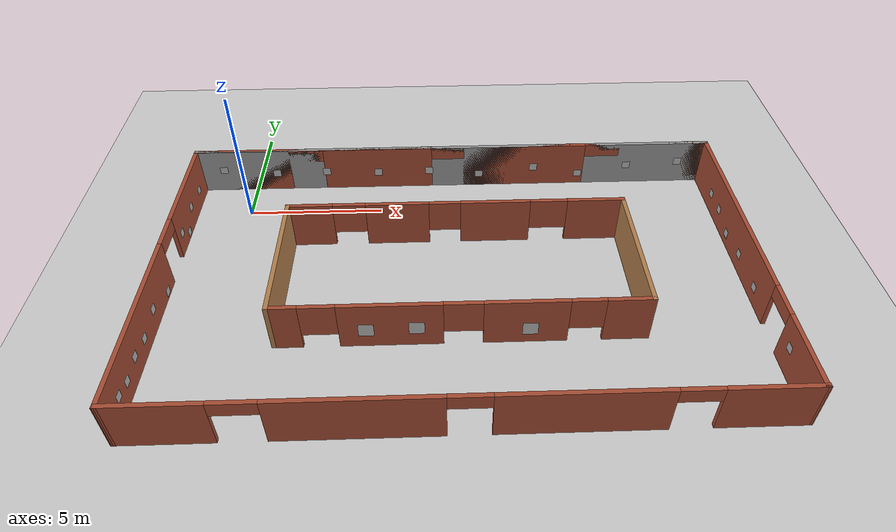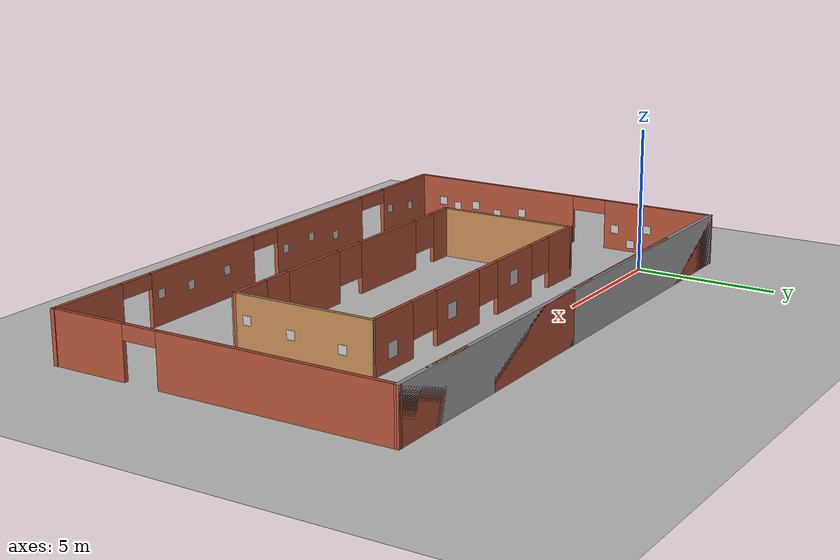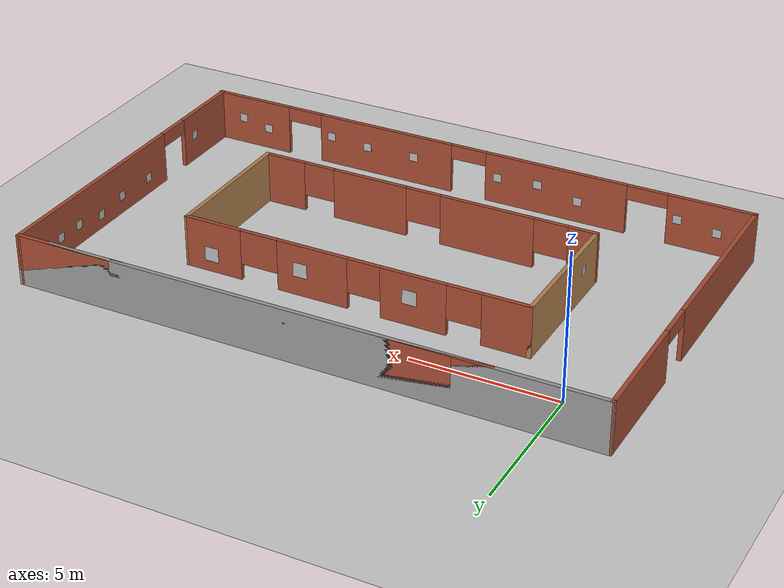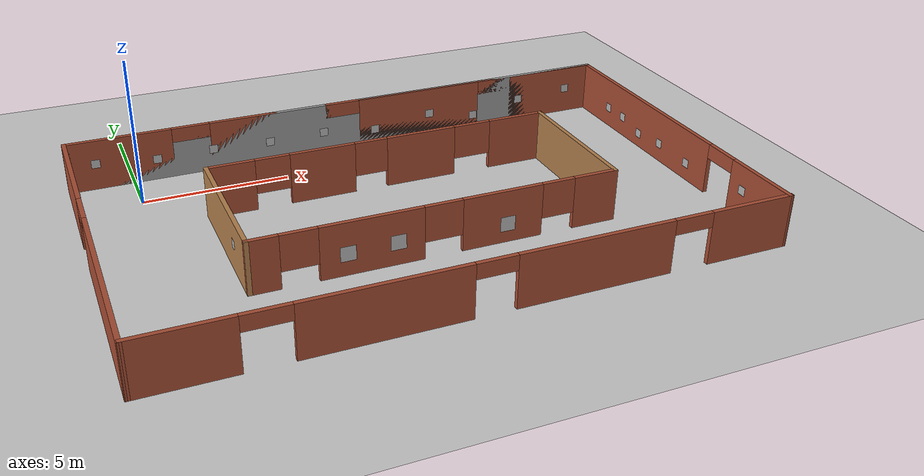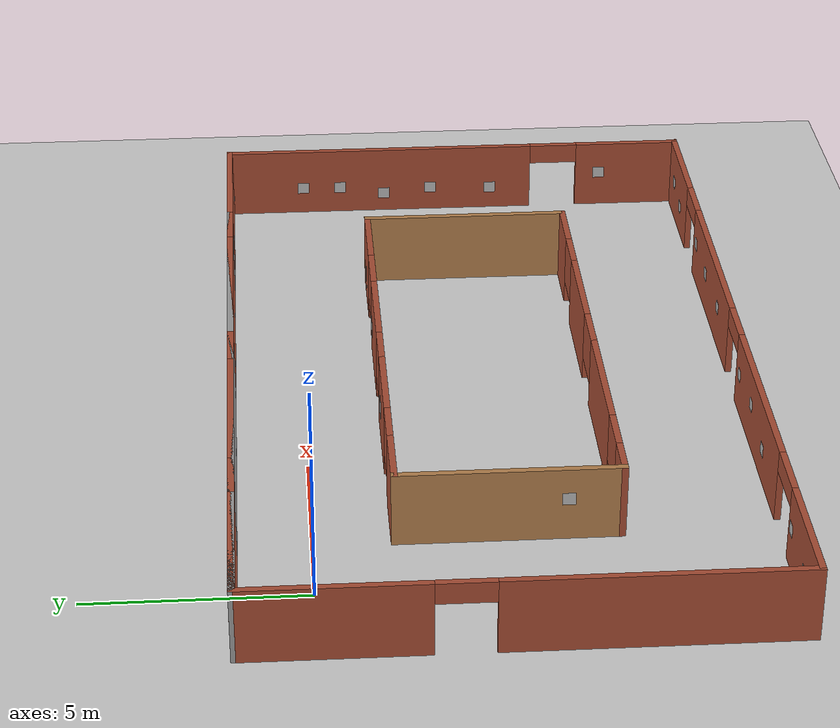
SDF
<sdf version="1.6">
 <world name="default">
  <light name="sun" type="directional">
   <pose>0 0 10 0 -0 0</pose>
   <diffuse>0.8 0.8 0.8 1</diffuse>
   <specular>0.1 0.1 0.1 1</specular>
   <attenuation>
    <range>1000</range>
    <constant>0.9</constant>
    <linear>0.01</linear>
    <quadratic>0.001</quadratic>
   </attenuation>
   <direction>-0.5 0.5 -1</direction>
  </light>
  <model name="ground_plane">
   <static>1</static>
   <link name="link">
    <collision name="collision">
     <geometry><plane><normal>0 0 1</normal><size>100 100</size></plane></geometry>
     <surface><friction><ode><mu>100</mu><mu2>50</mu2></ode></friction></surface>
    </collision>
    <visual name="visual">
     <cast_shadows>0</cast_shadows>
     <geometry><plane><normal>0 0 1</normal><size>100 100</size></plane></geometry>
     <material>
      <script><uri>file://media/materials/scripts/gazebo.material</uri><name>Gazebo/Grey</name></script>
     </material>
    </visual>
   </link>
  </model>
  <gravity>0 0 -9.8</gravity>
  <magnetic_field>6e-06 2.3e-05 -4.2e-05</magnetic_field>
  <atmosphere type="adiabatic"/>
  <physics name="default_physics" default="0" type="ode">
   <max_step_size>0.001</max_step_size>
   <real_time_factor>1</real_time_factor>
   <real_time_update_rate>1000</real_time_update_rate>
  </physics>
  <scene><ambient>0.4 0.4 0.4 1</ambient><background>0.7 0.7 0.7 1</background><shadows>1</shadows></scene>
  <spherical_coordinates>
   <surface_model>EARTH_WGS84</surface_model>
   <latitude_deg>0</latitude_deg>
   <longitude_deg>0</longitude_deg>
   <elevation>0</elevation>
   <heading_deg>0</heading_deg>
  </spherical_coordinates>
  <model name="tagtagtag">
   <model name="rectang_tag_door">
    <model name="Tag10">
     <static>1</static>
     <link name="link">
      <pose>0 0 0.1 0 -0 0</pose>
      <collision name="collision"><geometry><box><size>0.5 0.001 0.5</size></box></geometry></collision>
      <visual name="visual">
       <cast_shadows>0</cast_shadows>
       <geometry><box><size>0.5 0.001 0.5</size></box></geometry>
       <material>
        <script>
         <uri>model://Tag10/materials/scripts</uri>
         <uri>model://Tag10/materials/textures</uri>
         <name>vrc/Tag10</name>
        </script>
       </material>
      </visual>
     </link>
     <pose>-2.56781 -2.7391 -0.115231 0 -0 0</pose>
    </model>
    <model name="Tag11">
     <static>1</static>
     <link name="link">
      <pose>0 0 0.1 0 -0 0</pose>
      <collision name="collision"><geometry><box><size>0.5 0.001 0.5</size></box></geometry></collision>
      <visual name="visual">
       <cast_shadows>0</cast_shadows>
       <geometry><box><size>0.5 0.001 0.5</size></box></geometry>
       <material>
        <script>
         <uri>model://Tag11/materials/scripts</uri>
         <uri>model://Tag11/materials/textures</uri>
         <name>vrc/Tag11</name>
        </script>
       </material>
      </visual>
     </link>
     <pose>-0.967016 -2.71591 -0.09296 0 -0 0</pose>
    </model>
    <model name="Tag12">
     <static>1</static>
     <link name="link">
      <pose>0 0 0.1 0 -0 0</pose>
      <collision name="collision"><geometry><box><size>0.5 0.001 0.5</size></box></geometry></collision>
      <visual name="visual">
       <cast_shadows>0</cast_shadows>
       <geometry><box><size>0.5 0.001 0.5</size></box></geometry>
       <material>
        <script>
         <uri>model://Tag12/materials/scripts</uri>
         <uri>model://Tag12/materials/textures</uri>
         <name>vrc/Tag12</name>
        </script>
       </material>
      </visual>
     </link>
     <pose>2.62514 -2.78803 -0.180677 0 -0 0</pose>
    </model>
    <model name="Tag16">
     <static>1</static>
     <link name="link">
      <pose>0 0 0.1 0 1.57 0</pose>
      <collision name="collision"><geometry><box><size>0.5 0.001 0.5</size></box></geometry></collision>
      <visual name="visual">
       <cast_shadows>0</cast_shadows>
       <geometry><box><size>0.5 0.001 0.5</size></box></geometry>
       <material>
        <script>
         <uri>model://Tag16/materials/scripts</uri>
         <uri>model://Tag16/materials/textures</uri>
         <name>vrc/Tag16</name>
        </script>
       </material>
      </visual>
     </link>
     <pose>5.53752 2.44638 -0.24217 0 -0 0</pose>
    </model>
    <model name="Tag17">
     <static>1</static>
     <link name="link">
      <pose>0 0 0.1 0 -0 0</pose>
      <collision name="collision"><geometry><box><size>0.5 0.001 0.5</size></box></geometry></collision>
      <visual name="visual">
       <cast_shadows>0</cast_shadows>
       <geometry><box><size>0.5 0.001 0.5</size></box></geometry>
       <material>
        <script>
         <uri>model://Tag17/materials/scripts</uri>
         <uri>model://Tag17/materials/textures</uri>
         <name>vrc/Tag17</name>
        </script>
       </material>
      </visual>
     </link>
     <pose>2.27492 2.46278 0.055693 0 -0 0</pose>
    </model>
    <model name="Tag19">
     <static>1</static>
     <link name="link">
      <pose>0 0 0.1 0 -0 0</pose>
      <collision name="collision"><geometry><box><size>0.5 0.001 0.5</size></box></geometry></collision>
      <visual name="visual">
       <cast_shadows>0</cast_shadows>
       <geometry><box><size>0.5 0.001 0.5</size></box></geometry>
       <material>
        <script>
         <uri>model://Tag19/materials/scripts</uri>
         <uri>model://Tag19/materials/textures</uri>
         <name>vrc/Tag19</name>
        </script>
       </material>
      </visual>
     </link>
     <pose>-1.56097 2.45711 0.126815 0 -0 0</pose>
    </model>
    <model name="Tag500">
     <static>1</static>
     <link name="link">
      <pose>0 0 0 0 1.57 0</pose>
      <collision name="collision"><geometry><box><size>0.3 0.001 0.3</size></box></geometry></collision>
      <visual name="visual">
       <cast_shadows>0</cast_shadows>
       <geometry><box><size>0.3 0.001 0.3</size></box></geometry>
       <material>
        <script>
         <uri>model://Tag500/materials/scripts</uri>
         <uri>model://Tag500/materials/textures</uri>
         <name>vrc/Tag500</name>
        </script>
       </material>
      </visual>
     </link>
     <pose>-8.63151 5.78139 0.17484 0 -0 0</pose>
    </model>
    <model name="Tag501">
     <static>1</static>
     <link name="link">
      <pose>0 0 0 0 1.57 0</pose>
      <collision name="collision"><geometry><box><size>0.3 0.001 0.3</size></box></geometry></collision>
      <visual name="visual">
       <cast_shadows>0</cast_shadows>
       <geometry><box><size>0.3 0.001 0.3</size></box></geometry>
       <material>
        <script>
         <uri>model://Tag501/materials/scripts</uri>
         <uri>model://Tag501/materials/textures</uri>
         <name>vrc/Tag501</name>
        </script>
       </material>
      </visual>
     </link>
     <pose>-6.56786 5.76946 -0.005082 0 -0 0</pose>
    </model>
    <model name="Tag502">
     <static>1</static>
     <link name="link">
      <pose>0 0 0 0 1.57 0</pose>
      <collision name="collision"><geometry><box><size>0.3 0.001 0.3</size></box></geometry></collision>
      <visual name="visual">
       <cast_shadows>0</cast_shadows>
       <geometry><box><size>0.3 0.001 0.3</size></box></geometry>
       <material>
        <script>
         <uri>model://Tag502/materials/scripts</uri>
         <uri>model://Tag502/materials/textures</uri>
         <name>vrc/Tag502</name>
        </script>
       </material>
      </visual>
     </link>
     <pose>-4.60085 5.78078 0.027283 0 -0 0</pose>
    </model>
    <model name="Tag503">
     <static>1</static>
     <link name="link">
      <pose>0 0 0 0 1.57 0</pose>
      <collision name="collision"><geometry><box><size>0.3 0.001 0.3</size></box></geometry></collision>
      <visual name="visual">
       <cast_shadows>0</cast_shadows>
       <geometry><box><size>0.3 0.001 0.3</size></box></geometry>
       <material>
        <script>
         <uri>model://Tag503/materials/scripts</uri>
         <uri>model://Tag503/materials/textures</uri>
         <name>vrc/Tag503</name>
        </script>
       </material>
      </visual>
     </link>
     <pose>-2.55467 5.77379 -0.046381 0 -0 0</pose>
    </model>
    <model name="Tag504">
     <static>1</static>
     <link name="link">
      <pose>0 0 0 0 1.57 0</pose>
      <collision name="collision"><geometry><box><size>0.3 0.001 0.3</size></box></geometry></collision>
      <visual name="visual">
       <cast_shadows>0</cast_shadows>
       <geometry><box><size>0.3 0.001 0.3</size></box></geometry>
       <material>
        <script>
         <uri>model://Tag504/materials/scripts</uri>
         <uri>model://Tag504/materials/textures</uri>
         <name>vrc/Tag504</name>
        </script>
       </material>
      </visual>
     </link>
     <pose>-0.537655 5.77031 -0.010499 0 -0 0</pose>
    </model>
    <model name="Tag505">
     <static>1</static>
     <link name="link">
      <pose>0 0 0 0 1.57 0</pose>
      <collision name="collision"><geometry><box><size>0.3 0.001 0.3</size></box></geometry></collision>
      <visual name="visual">
       <cast_shadows>0</cast_shadows>
       <geometry><box><size>0.3 0.001 0.3</size></box></geometry>
       <material>
        <script>
         <uri>model://Tag505/materials/scripts</uri>
         <uri>model://Tag505/materials/textures</uri>
         <name>vrc/Tag505</name>
        </script>
       </material>
      </visual>
     </link>
     <pose>1.45105 5.77601 -0.223016 0 -0 0</pose>
    </model>
    <model name="Tag506">
     <static>1</static>
     <link name="link">
      <pose>0 0 0 0 1.57 0</pose>
      <collision name="collision"><geometry><box><size>0.3 0.001 0.3</size></box></geometry></collision>
      <visual name="visual">
       <cast_shadows>0</cast_shadows>
       <geometry><box><size>0.3 0.001 0.3</size></box></geometry>
       <material>
        <script>
         <uri>model://Tag506/materials/scripts</uri>
         <uri>model://Tag506/materials/textures</uri>
         <name>vrc/Tag506</name>
        </script>
       </material>
      </visual>
     </link>
     <pose>3.6389 5.78005 0.050605 0 -0 0</pose>
    </model>
    <model name="Tag508">
     <static>1</static>
     <link name="link">
      <pose>0 0 0 0 1.57 0</pose>
      <collision name="collision"><geometry><box><size>0.3 0.001 0.3</size></box></geometry></collision>
      <visual name="visual">
       <cast_shadows>0</cast_shadows>
       <geometry><box><size>0.3 0.001 0.3</size></box></geometry>
       <material>
        <script>
         <uri>model://Tag508/materials/scripts</uri>
         <uri>model://Tag508/materials/textures</uri>
         <name>vrc/Tag508</name>
        </script>
       </material>
      </visual>
     </link>
     <pose>5.45198 5.773 -0.294287 0 -0 0</pose>
    </model>
    <model name="Tag509">
     <static>1</static>
     <link name="link">
      <pose>0 0 0 0 1.57 0</pose>
      <collision name="collision"><geometry><box><size>0.3 0.001 0.3</size></box></geometry></collision>
      <visual name="visual">
       <cast_shadows>0</cast_shadows>
       <geometry><box><size>0.3 0.001 0.3</size></box></geometry>
       <material>
        <script>
         <uri>model://Tag509/materials/scripts</uri>
         <uri>model://Tag509/materials/textures</uri>
         <name>vrc/Tag509</name>
        </script>
       </material>
      </visual>
     </link>
     <pose>7.37911 5.77859 0.055954 0 -0 0</pose>
    </model>
    <model name="Tag510">
     <static>1</static>
     <link name="link">
      <pose>0 0 0 0 1.57 0</pose>
      <collision name="collision"><geometry><box><size>0.3 0.001 0.3</size></box></geometry></collision>
      <visual name="visual">
       <cast_shadows>0</cast_shadows>
       <geometry><box><size>0.3 0.001 0.3</size></box></geometry>
       <material>
        <script>
         <uri>model://Tag510/materials/scripts</uri>
         <uri>model://Tag510/materials/textures</uri>
         <name>vrc/Tag510</name>
        </script>
       </material>
      </visual>
     </link>
     <pose>9.43357 5.76854 0.199067 0 -0 0</pose>
    </model>
    <model name="Tag511_0">
     <static>1</static>
     <link name="link">
      <pose>0 0 0 0 1.57 0</pose>
      <collision name="collision"><geometry><box><size>0.3 0.001 0.3</size></box></geometry></collision>
      <visual name="visual">
       <cast_shadows>0</cast_shadows>
       <geometry><box><size>0.3 0.001 0.3</size></box></geometry>
       <material>
        <script>
         <uri>model://Tag511/materials/scripts</uri>
         <uri>model://Tag511/materials/textures</uri>
         <name>vrc/Tag511</name>
        </script>
       </material>
      </visual>
     </link>
     <pose>9.49825 -6.04076 0.206371 0 -0 0</pose>
    </model>
    <model name="Tag512">
     <static>1</static>
     <link name="link">
      <pose>0 0 0 0 1.57 0</pose>
      <collision name="collision"><geometry><box><size>0.3 0.001 0.3</size></box></geometry></collision>
      <visual name="visual">
       <cast_shadows>0</cast_shadows>
       <geometry><box><size>0.3 0.001 0.3</size></box></geometry>
       <material>
        <script>
         <uri>model://Tag512/materials/scripts</uri>
         <uri>model://Tag512/materials/textures</uri>
         <name>vrc/Tag512</name>
        </script>
       </material>
      </visual>
     </link>
     <pose>8.45936 -6.03277 0.008141 0 -0 0</pose>
    </model>
    <model name="Tag513">
     <static>1</static>
     <link name="link">
      <pose>0 0 0 0 1.57 0</pose>
      <collision name="collision"><geometry><box><size>0.3 0.001 0.3</size></box></geometry></collision>
      <visual name="visual">
       <cast_shadows>0</cast_shadows>
       <geometry><box><size>0.3 0.001 0.3</size></box></geometry>
       <material>
        <script>
         <uri>model://Tag513/materials/scripts</uri>
         <uri>model://Tag513/materials/textures</uri>
         <name>vrc/Tag513</name>
        </script>
       </material>
      </visual>
     </link>
     <pose>5.89194 -6.04825 0.261097 0 -0 0</pose>
    </model>
    <model name="Tag514">
     <static>1</static>
     <link name="link">
      <pose>0 0 0 0 1.57 0</pose>
      <collision name="collision"><geometry><box><size>0.3 0.001 0.3</size></box></geometry></collision>
      <visual name="visual">
       <cast_shadows>0</cast_shadows>
       <geometry><box><size>0.3 0.001 0.3</size></box></geometry>
       <material>
        <script>
         <uri>model://Tag514/materials/scripts</uri>
         <uri>model://Tag514/materials/textures</uri>
         <name>vrc/Tag514</name>
        </script>
       </material>
      </visual>
     </link>
     <pose>4.45592 -6.0546 0.177076 0 -0 0</pose>
    </model>
    <model name="Tag515">
     <static>1</static>
     <link name="link">
      <pose>0 0 0 0 1.57 0</pose>
      <collision name="collision"><geometry><box><size>0.3 0.001 0.3</size></box></geometry></collision>
      <visual name="visual">
       <cast_shadows>0</cast_shadows>
       <geometry><box><size>0.3 0.001 0.3</size></box></geometry>
       <material>
        <script>
         <uri>model://Tag515/materials/scripts</uri>
         <uri>model://Tag515/materials/textures</uri>
         <name>vrc/Tag515</name>
        </script>
       </material>
      </visual>
     </link>
     <pose>2.64375 -6.05189 0.210848 0 -0 0</pose>
    </model>
    <model name="Tag516">
     <static>1</static>
     <link name="link">
      <pose>0 0 0 0 1.57 0</pose>
      <collision name="collision"><geometry><box><size>0.3 0.001 0.3</size></box></geometry></collision>
      <visual name="visual">
       <cast_shadows>0</cast_shadows>
       <geometry><box><size>0.3 0.001 0.3</size></box></geometry>
       <material>
        <script>
         <uri>model://Tag516/materials/scripts</uri>
         <uri>model://Tag516/materials/textures</uri>
         <name>vrc/Tag516</name>
        </script>
       </material>
      </visual>
     </link>
     <pose>-0.550614 -6.04681 0.182751 0 -0 0</pose>
    </model>
    <model name="Tag517">
     <static>1</static>
     <link name="link">
      <pose>0 0 0 0 1.57 0</pose>
      <collision name="collision"><geometry><box><size>0.3 0.001 0.3</size></box></geometry></collision>
      <visual name="visual">
       <cast_shadows>0</cast_shadows>
       <geometry><box><size>0.3 0.001 0.3</size></box></geometry>
       <material>
        <script>
         <uri>model://Tag517/materials/scripts</uri>
         <uri>model://Tag517/materials/textures</uri>
         <name>vrc/Tag517</name>
        </script>
       </material>
      </visual>
     </link>
     <pose>-2.03037 -6.05292 0.265919 0 -0 0</pose>
    </model>
    <model name="Tag518">
     <static>1</static>
     <link name="link">
      <pose>0 0 0 0 1.57 0</pose>
      <collision name="collision"><geometry><box><size>0.3 0.001 0.3</size></box></geometry></collision>
      <visual name="visual">
       <cast_shadows>0</cast_shadows>
       <geometry><box><size>0.3 0.001 0.3</size></box></geometry>
       <material>
        <script>
         <uri>model://Tag518/materials/scripts</uri>
         <uri>model://Tag518/materials/textures</uri>
         <name>vrc/Tag518</name>
        </script>
       </material>
      </visual>
     </link>
     <pose>-3.49891 -6.05222 -0.008344 0 -0 0</pose>
    </model>
    <model name="Tag519">
     <static>1</static>
     <link name="link">
      <pose>0 0 0 0 1.57 0</pose>
      <collision name="collision"><geometry><box><size>0.3 0.001 0.3</size></box></geometry></collision>
      <visual name="visual">
       <cast_shadows>0</cast_shadows>
       <geometry><box><size>0.3 0.001 0.3</size></box></geometry>
       <material>
        <script>
         <uri>model://Tag519/materials/scripts</uri>
         <uri>model://Tag519/materials/textures</uri>
         <name>vrc/Tag519</name>
        </script>
       </material>
      </visual>
     </link>
     <pose>-7.02121 -6.02807 0.214664 0 -0 0</pose>
    </model>
    <model name="Tag520">
     <static>1</static>
     <link name="link">
      <pose>0 0 0 0 1.57 0</pose>
      <collision name="collision"><geometry><box><size>0.3 0.001 0.3</size></box></geometry></collision>
      <visual name="visual">
       <cast_shadows>0</cast_shadows>
       <geometry><box><size>0.3 0.001 0.3</size></box></geometry>
       <material>
        <script>
         <uri>model://Tag520/materials/scripts</uri>
         <uri>model://Tag520/materials/textures</uri>
         <name>vrc/Tag520</name>
        </script>
       </material>
      </visual>
     </link>
     <pose>-8.39361 -6.03917 0.042146 0 -0 0</pose>
    </model>
    <model name="Tag531">
     <static>1</static>
     <link name="link">
      <pose>0 0 0 0 -0 1.57</pose>
      <collision name="collision"><geometry><box><size>0.3 0.001 0.3</size></box></geometry></collision>
      <visual name="visual">
       <cast_shadows>0</cast_shadows>
       <geometry><box><size>0.3 0.001 0.3</size></box></geometry>
       <material>
        <script>
         <uri>model://Tag531/materials/scripts</uri>
         <uri>model://Tag531/materials/textures</uri>
         <name>vrc/Tag531</name>
        </script>
       </material>
      </visual>
     </link>
     <pose>-9.46434 -5.15371 0.121026 0 -0 0</pose>
    </model>
    <model name="Tag532">
     <static>1</static>
     <link name="link">
      <pose>0 0 0 0 -0 1.57</pose>
      <collision name="collision"><geometry><box><size>0.3 0.001 0.3</size></box></geometry></collision>
      <visual name="visual">
       <cast_shadows>0</cast_shadows>
       <geometry><box><size>0.3 0.001 0.3</size></box></geometry>
       <material>
        <script>
         <uri>model://Tag532/materials/scripts</uri>
         <uri>model://Tag532/materials/textures</uri>
         <name>vrc/Tag532</name>
        </script>
       </material>
      </visual>
     </link>
     <pose>-9.43448 -3.67672 0.1199 0 -0 0</pose>
    </model>
    <model name="Tag533">
     <static>1</static>
     <link name="link">
      <pose>0 0 0 0 -0 1.57</pose>
      <collision name="collision"><geometry><box><size>0.3 0.001 0.3</size></box></geometry></collision>
      <visual name="visual">
       <cast_shadows>0</cast_shadows>
       <geometry><box><size>0.3 0.001 0.3</size></box></geometry>
       <material>
        <script>
         <uri>model://Tag533/materials/scripts</uri>
         <uri>model://Tag533/materials/textures</uri>
         <name>vrc/Tag533</name>
        </script>
       </material>
      </visual>
     </link>
     <pose>-9.43647 -1.68 0.088645 0 -0 0</pose>
    </model>
    <model name="Tag534">
     <static>1</static>
     <link name="link">
      <pose>0 0 0 0 -0 1.57</pose>
      <collision name="collision"><geometry><box><size>0.3 0.001 0.3</size></box></geometry></collision>
      <visual name="visual">
       <cast_shadows>0</cast_shadows>
       <geometry><box><size>0.3 0.001 0.3</size></box></geometry>
       <material>
        <script>
         <uri>model://Tag534/materials/scripts</uri>
         <uri>model://Tag534/materials/textures</uri>
         <name>vrc/Tag534</name>
        </script>
       </material>
      </visual>
     </link>
     <pose>-9.39568 -0.411083 -0.359263 0 -0 0</pose>
    </model>
    <model name="Tag535">
     <static>1</static>
     <link name="link">
      <pose>0 0 0 0 -0 1.57</pose>
      <collision name="collision"><geometry><box><size>0.3 0.001 0.3</size></box></geometry></collision>
      <visual name="visual">
       <cast_shadows>0</cast_shadows>
       <geometry><box><size>0.3 0.001 0.3</size></box></geometry>
       <material>
        <script>
         <uri>model://Tag535/materials/scripts</uri>
         <uri>model://Tag535/materials/textures</uri>
         <name>vrc/Tag535</name>
        </script>
       </material>
      </visual>
     </link>
     <pose>-9.45868 2.20865 0.001535 0 -0 0</pose>
    </model>
    <model name="Tag536">
     <static>1</static>
     <link name="link">
      <pose>0 0 0 0 -0 1.57</pose>
      <collision name="collision"><geometry><box><size>0.3 0.001 0.3</size></box></geometry></collision>
      <visual name="visual">
       <cast_shadows>0</cast_shadows>
       <geometry><box><size>0.3 0.001 0.3</size></box></geometry>
       <material>
        <script>
         <uri>model://Tag536/materials/scripts</uri>
         <uri>model://Tag536/materials/textures</uri>
         <name>vrc/Tag536</name>
        </script>
       </material>
      </visual>
     </link>
     <pose>-9.40956 3.51705 0.159334 0 -0 0</pose>
    </model>
    <model name="Tag537">
     <static>1</static>
     <link name="link">
      <pose>0 0 0 0 -0 1.57</pose>
      <collision name="collision"><geometry><box><size>0.3 0.001 0.3</size></box></geometry></collision>
      <visual name="visual">
       <cast_shadows>0</cast_shadows>
       <geometry><box><size>0.3 0.001 0.3</size></box></geometry>
       <material>
        <script>
         <uri>model://Tag537/materials/scripts</uri>
         <uri>model://Tag537/materials/textures</uri>
         <name>vrc/Tag537</name>
        </script>
       </material>
      </visual>
     </link>
     <pose>-9.45738 4.8265 -0.0513 0 -0 0</pose>
    </model>
    <model name="Tag538">
     <static>1</static>
     <link name="link">
      <pose>0 0 0 0 -0 1.57</pose>
      <collision name="collision"><geometry><box><size>0.3 0.001 0.3</size></box></geometry></collision>
      <visual name="visual">
       <cast_shadows>0</cast_shadows>
       <geometry><box><size>0.3 0.001 0.3</size></box></geometry>
       <material>
        <script>
         <uri>model://Tag538/materials/scripts</uri>
         <uri>model://Tag538/materials/textures</uri>
         <name>vrc/Tag538</name>
        </script>
       </material>
      </visual>
     </link>
     <pose>-9.45703 2.84833 -0.48277 0 -0 0</pose>
    </model>
    <model name="Tag539">
     <static>1</static>
     <link name="link">
      <pose>0 0 0 0 -0 1.57</pose>
      <collision name="collision"><geometry><box><size>0.3 0.001 0.3</size></box></geometry></collision>
      <visual name="visual">
       <cast_shadows>0</cast_shadows>
       <geometry><box><size>0.3 0.001 0.3</size></box></geometry>
       <material>
        <script>
         <uri>model://Tag539/materials/scripts</uri>
         <uri>model://Tag539/materials/textures</uri>
         <name>vrc/Tag539</name>
        </script>
       </material>
      </visual>
     </link>
     <pose>-9.45583 -4.50507 -0.009742 0 -0 0</pose>
    </model>
    <model name="Tag540">
     <static>1</static>
     <link name="link">
      <pose>0 0 0 0 -0 1.57</pose>
      <collision name="collision"><geometry><box><size>0.3 0.001 0.3</size></box></geometry></collision>
      <visual name="visual">
       <cast_shadows>0</cast_shadows>
       <geometry><box><size>0.3 0.001 0.3</size></box></geometry>
       <material>
        <script>
         <uri>model://Tag540/materials/scripts</uri>
         <uri>model://Tag540/materials/textures</uri>
         <name>vrc/Tag540</name>
        </script>
       </material>
      </visual>
     </link>
     <pose>-9.45822 -2.76528 -0.084634 0 -0 0</pose>
    </model>
    <model name="Tag541">
     <static>1</static>
     <link name="link">
      <pose>0 0 0 0 -0 1.57</pose>
      <collision name="collision"><geometry><box><size>0.3 0.001 0.3</size></box></geometry></collision>
      <visual name="visual">
       <cast_shadows>0</cast_shadows>
       <geometry><box><size>0.3 0.001 0.3</size></box></geometry>
       <material>
        <script>
         <uri>model://Tag541/materials/scripts</uri>
         <uri>model://Tag541/materials/textures</uri>
         <name>vrc/Tag541</name>
        </script>
       </material>
      </visual>
     </link>
     <pose>10.3807 4.91568 -0.461618 0 -0 0</pose>
    </model>
    <model name="Tag542">
     <static>1</static>
     <link name="link">
      <pose>0 0 0 0 -0 1.57</pose>
      <collision name="collision"><geometry><box><size>0.3 0.001 0.3</size></box></geometry></collision>
      <visual name="visual">
       <cast_shadows>0</cast_shadows>
       <geometry><box><size>0.3 0.001 0.3</size></box></geometry>
       <material>
        <script>
         <uri>model://Tag542/materials/scripts</uri>
         <uri>model://Tag542/materials/textures</uri>
         <name>vrc/Tag542</name>
        </script>
       </material>
      </visual>
     </link>
     <pose>10.3435 3.90989 -0.047569 0 -0 0</pose>
    </model>
    <model name="Tag543">
     <static>1</static>
     <link name="link">
      <pose>0 0 0 0 -0 1.57</pose>
      <collision name="collision"><geometry><box><size>0.3 0.001 0.3</size></box></geometry></collision>
      <visual name="visual">
       <cast_shadows>0</cast_shadows>
       <geometry><box><size>0.3 0.001 0.3</size></box></geometry>
       <material>
        <script>
         <uri>model://Tag543/materials/scripts</uri>
         <uri>model://Tag543/materials/textures</uri>
         <name>vrc/Tag543</name>
        </script>
       </material>
      </visual>
     </link>
     <pose>10.3377 2.92258 -0.0475 0 -0 0</pose>
    </model>
    <model name="Tag544">
     <static>1</static>
     <link name="link">
      <pose>0 0 0 0 -0 1.57</pose>
      <collision name="collision"><geometry><box><size>0.3 0.001 0.3</size></box></geometry></collision>
      <visual name="visual">
       <cast_shadows>0</cast_shadows>
       <geometry><box><size>0.3 0.001 0.3</size></box></geometry>
       <material>
        <script>
         <uri>model://Tag544/materials/scripts</uri>
         <uri>model://Tag544/materials/textures</uri>
         <name>vrc/Tag544</name>
        </script>
       </material>
      </visual>
     </link>
     <pose>10.2886 1.74988 -0.222134 0 -0 0</pose>
    </model>
    <model name="Tag545">
     <static>1</static>
     <link name="link">
      <pose>0 0 0 0 -0 1.57</pose>
      <collision name="collision"><geometry><box><size>0.3 0.001 0.3</size></box></geometry></collision>
      <visual name="visual">
       <cast_shadows>0</cast_shadows>
       <geometry><box><size>0.3 0.001 0.3</size></box></geometry>
       <material>
        <script>
         <uri>model://Tag545/materials/scripts</uri>
         <uri>model://Tag545/materials/textures</uri>
         <name>vrc/Tag545</name>
        </script>
       </material>
      </visual>
     </link>
     <pose>10.3205 0.491024 -0.104602 0 -0 0</pose>
    </model>
    <model name="Tag546">
     <static>1</static>
     <link name="link">
      <pose>0 0 0 0 -0 1.57</pose>
      <collision name="collision"><geometry><box><size>0.3 0.001 0.3</size></box></geometry></collision>
      <visual name="visual">
       <cast_shadows>0</cast_shadows>
       <geometry><box><size>0.3 0.001 0.3</size></box></geometry>
       <material>
        <script>
         <uri>model://Tag546/materials/scripts</uri>
         <uri>model://Tag546/materials/textures</uri>
         <name>vrc/Tag546</name>
        </script>
       </material>
      </visual>
     </link>
     <pose>10.3313 -1.11998 -0.160051 0 -0 0</pose>
    </model>
    <model name="Tag547">
     <static>1</static>
     <link name="link">
      <pose>0 0 0 0 -0 1.57</pose>
      <collision name="collision"><geometry><box><size>0.3 0.001 0.3</size></box></geometry></collision>
      <visual name="visual">
       <cast_shadows>0</cast_shadows>
       <geometry><box><size>0.3 0.001 0.3</size></box></geometry>
       <material>
        <script>
         <uri>model://Tag547/materials/scripts</uri>
         <uri>model://Tag547/materials/textures</uri>
         <name>vrc/Tag547</name>
        </script>
       </material>
      </visual>
     </link>
     <pose>10.3486 -4.09101 0.177507 0 -0 0</pose>
    </model>
    <model name="Tag548">
     <static>1</static>
     <link name="link">
      <pose>0 0 0 0 -0 1.57</pose>
      <collision name="collision"><geometry><box><size>0.3 0.001 0.3</size></box></geometry></collision>
      <visual name="visual">
       <cast_shadows>0</cast_shadows>
       <geometry><box><size>0.3 0.001 0.3</size></box></geometry>
       <material>
        <script>
         <uri>model://Tag548/materials/scripts</uri>
         <uri>model://Tag548/materials/textures</uri>
         <name>vrc/Tag548</name>
        </script>
       </material>
      </visual>
     </link>
     <pose>6.57981 -2.10699 0.230481 0 -0 0</pose>
    </model>
    <model name="Tag549">
     <static>1</static>
     <link name="link">
      <pose>0 0 0 0 -0 1.57</pose>
      <collision name="collision"><geometry><box><size>0.3 0.001 0.3</size></box></geometry></collision>
      <visual name="visual">
       <cast_shadows>0</cast_shadows>
       <geometry><box><size>0.3 0.001 0.3</size></box></geometry>
       <material>
        <script>
         <uri>model://Tag549/materials/scripts</uri>
         <uri>model://Tag549/materials/textures</uri>
         <name>vrc/Tag549</name>
        </script>
       </material>
      </visual>
     </link>
     <pose>6.57833 -0.487634 0.063 0 -0 0</pose>
    </model>
    <model name="Tag550">
     <static>1</static>
     <link name="link">
      <pose>0 0 0 0 -0 1.57</pose>
      <collision name="collision"><geometry><box><size>0.3 0.001 0.3</size></box></geometry></collision>
      <visual name="visual">
       <cast_shadows>0</cast_shadows>
       <geometry><box><size>0.3 0.001 0.3</size></box></geometry>
       <material>
        <script>
         <uri>model://Tag550/materials/scripts</uri>
         <uri>model://Tag550/materials/textures</uri>
         <name>vrc/Tag550</name>
        </script>
       </material>
      </visual>
     </link>
     <pose>6.57501 1.37979 -0.055489 0 -0 0</pose>
    </model>
    <model name="Tag551">
     <static>1</static>
     <link name="link">
      <pose>0 0 0 0 -0 1.57</pose>
      <collision name="collision"><geometry><box><size>0.3 0.001 0.3</size></box></geometry></collision>
      <visual name="visual">
       <cast_shadows>0</cast_shadows>
       <geometry><box><size>0.3 0.001 0.3</size></box></geometry>
       <material>
        <script>
         <uri>model://Tag551/materials/scripts</uri>
         <uri>model://Tag551/materials/textures</uri>
         <name>vrc/Tag551</name>
        </script>
       </material>
      </visual>
     </link>
     <pose>-5.63019 1.9353 -0.188828 0 -0 0</pose>
    </model>
    <model name="Tag552">
     <static>1</static>
     <link name="link">
      <pose>0 0 0 0 -0 1.57</pose>
      <collision name="collision"><geometry><box><size>0.3 0.001 0.3</size></box></geometry></collision>
      <visual name="visual">
       <cast_shadows>0</cast_shadows>
       <geometry><box><size>0.3 0.001 0.3</size></box></geometry>
       <material>
        <script>
         <uri>model://Tag552/materials/scripts</uri>
         <uri>model://Tag552/materials/textures</uri>
         <name>vrc/Tag552</name>
        </script>
       </material>
      </visual>
     </link>
     <pose>-5.62265 0.300223 -0.009232 0 -0 0</pose>
    </model>
    <model name="Tag553">
     <static>1</static>
     <link name="link">
      <pose>0 0 0 0 -0 1.57</pose>
      <collision name="collision"><geometry><box><size>0.3 0.001 0.3</size></box></geometry></collision>
      <visual name="visual">
       <cast_shadows>0</cast_shadows>
       <geometry><box><size>0.3 0.001 0.3</size></box></geometry>
       <material>
        <script>
         <uri>model://Tag553/materials/scripts</uri>
         <uri>model://Tag553/materials/textures</uri>
         <name>vrc/Tag553</name>
        </script>
       </material>
      </visual>
     </link>
     <pose>-5.66178 -1.43448 0.282688 0 -0 0</pose>
    </model>
    <static>0</static>
    <pose>-0.217911 0.067642 0.745209 0 -0 0</pose>
   </model>
   <model name="rectangle_door">
    <pose>0.217911 -0.067642 -0.745205 0 -0 0</pose>
    <link name="Wall_0">
     <collision name="Wall_0_Collision">
      <geometry><box><size>20.15 0.15 2.5</size></box></geometry>
      <pose>0 0 1.25 0 -0 0</pose>
     </collision>
     <visual name="Wall_0_Visual">
      <pose>0 0 1.25 0 -0 0</pose>
      <geometry><box><size>20.15 0.15 2.5</size></box></geometry>
      <material>
       <script><uri>file://media/materials/scripts/gazebo.material</uri><name>Gazebo/Grey</name></script>
       <ambient>1 1 1 1</ambient>
      </material>
      <meta><layer>0</layer></meta>
     </visual>
     <pose>0.004778 6 0 0 -0 0</pose>
    </link>
    <link name="Wall_10">
     <pose>0.004778 2.5 0 0 -0 0</pose>
     <visual name="Wall_10_Visual_0">
      <pose>-5.24374 0 1.25 0 -0 0</pose>
      <geometry><box><size>1.66252 0.15 2.5</size></box></geometry>
      <material>
       <script><uri>file://media/materials/scripts/gazebo.material</uri><name>Gazebo/Bricks</name></script>
       <ambient>1 1 1 1</ambient>
      </material>
      <meta><layer>0</layer></meta>
     </visual>
     <collision name="Wall_10_Collision_0">
      <geometry><box><size>1.66252 0.15 2.5</size></box></geometry>
      <pose>-5.24374 0 1.25 0 -0 0</pose>
     </collision>
     <visual name="Wall_10_Visual_1">
      <pose>0.831259 0 0.25 0 -0 0</pose>
      <geometry><box><size>10.4875 0.15 0.5</size></box></geometry>
      <material>
       <script><uri>file://media/materials/scripts/gazebo.material</uri><name>Gazebo/Bricks</name></script>
       <ambient>1 1 1 1</ambient>
      </material>
      <meta><layer>0</layer></meta>
     </visual>
     <collision name="Wall_10_Collision_1">
      <geometry><box><size>10.4875 0.15 0.5</size></box></geometry>
      <pose>0.831259 0 0.25 0 -0 0</pose>
     </collision>
     <visual name="Wall_10_Visual_2">
      <pose>-2.11057 0 1.5 0 -0 0</pose>
      <geometry><box><size>2.25902 0.15 2</size></box></geometry>
      <material>
       <script><uri>file://media/materials/scripts/gazebo.material</uri><name>Gazebo/Bricks</name></script>
       <ambient>1 1 1 1</ambient>
      </material>
      <meta><layer>0</layer></meta>
     </visual>
     <collision name="Wall_10_Collision_2">
      <geometry><box><size>2.25902 0.15 2</size></box></geometry>
      <pose>-2.11057 0 1.5 0 -0 0</pose>
     </collision>
     <visual name="Wall_10_Visual_3">
      <pose>1.41396 0 1.5 0 -0 0</pose>
      <geometry><box><size>2.49843 0.15 2</size></box></geometry>
      <material>
       <script><uri>file://media/materials/scripts/gazebo.material</uri><name>Gazebo/Bricks</name></script>
       <ambient>1 1 1 1</ambient>
      </material>
      <meta><layer>0</layer></meta>
     </visual>
     <collision name="Wall_10_Collision_3">
      <geometry><box><size>2.49843 0.15 2</size></box></geometry>
      <pose>1.41396 0 1.5 0 -0 0</pose>
     </collision>
     <visual name="Wall_10_Visual_4">
      <pose>5.03509 0 1.5 0 -0 0</pose>
      <geometry><box><size>2.07983 0.15 2</size></box></geometry>
      <material>
       <script><uri>file://media/materials/scripts/gazebo.material</uri><name>Gazebo/Bricks</name></script>
       <ambient>1 1 1 1</ambient>
      </material>
      <meta><layer>0</layer></meta>
     </visual>
     <collision name="Wall_10_Collision_4">
      <geometry><box><size>2.07983 0.15 2</size></box></geometry>
      <pose>5.03509 0 1.5 0 -0 0</pose>
     </collision>
     <visual name="Wall_10_Visual_5">
      <pose>-3.82628 0 1.9 0 -0 0</pose>
      <geometry><box><size>1.1724 0.15 1.2</size></box></geometry>
      <material>
       <script><uri>file://media/materials/scripts/gazebo.material</uri><name>Gazebo/Bricks</name></script>
       <ambient>1 1 1 1</ambient>
      </material>
      <meta><layer>0</layer></meta>
     </visual>
     <collision name="Wall_10_Collision_5">
      <geometry><box><size>1.1724 0.15 1.2</size></box></geometry>
      <pose>-3.82628 0 1.9 0 -0 0</pose>
     </collision>
     <visual name="Wall_10_Visual_6">
      <pose>-0.408155 0 1.9 0 -0 0</pose>
      <geometry><box><size>1.1458 0.15 1.2</size></box></geometry>
      <material>
       <script><uri>file://media/materials/scripts/gazebo.material</uri><name>Gazebo/Bricks</name></script>
       <ambient>1 1 1 1</ambient>
      </material>
      <meta><layer>0</layer></meta>
     </visual>
     <collision name="Wall_10_Collision_6">
      <geometry><box><size>1.1458 0.15 1.2</size></box></geometry>
      <pose>-0.408155 0 1.9 0 -0 0</pose>
     </collision>
     <visual name="Wall_10_Visual_7">
      <pose>3.32917 0 1.9 0 -0 0</pose>
      <geometry><box><size>1.332 0.15 1.2</size></box></geometry>
      <material>
       <script><uri>file://media/materials/scripts/gazebo.material</uri><name>Gazebo/Bricks</name></script>
       <ambient>1 1 1 1</ambient>
      </material>
      <meta><layer>0</layer></meta>
     </visual>
     <collision name="Wall_10_Collision_7">
      <geometry><box><size>1.332 0.15 1.2</size></box></geometry>
      <pose>3.32917 0 1.9 0 -0 0</pose>
     </collision>
    </link>
    <link name="Wall_11">
     <collision name="Wall_11_Collision">
      <geometry><box><size>5.15 0.15 2.5</size></box></geometry>
      <pose>0 0 1.25 0 -0 0</pose>
     </collision>
     <visual name="Wall_11_Visual">
      <pose>0 0 1.25 0 -0 0</pose>
      <geometry><box><size>5.15 0.15 2.5</size></box></geometry>
      <material>
       <script><uri>file://media/materials/scripts/gazebo.material</uri><name>Gazebo/Wood</name></script>
       <ambient>1 1 1 1</ambient>
      </material>
      <meta><layer>0</layer></meta>
     </visual>
     <pose>6.00528 0 0 0 0 -1.5706</pose>
    </link>
    <link name="Wall_12">
     <pose>0.005278 -2.5 0 0 -0 3.14159</pose>
     <visual name="Wall_12_Visual_0">
      <pose>-5.30109 0 1.25 0 -0 0</pose>
      <geometry><box><size>1.54882 0.15 2.5</size></box></geometry>
      <material>
       <script><uri>file://media/materials/scripts/gazebo.material</uri><name>Gazebo/Bricks</name></script>
       <ambient>1 1 1 1</ambient>
      </material>
      <meta><layer>0</layer></meta>
     </visual>
     <collision name="Wall_12_Collision_0">
      <geometry><box><size>1.54882 0.15 2.5</size></box></geometry>
      <pose>-5.30109 0 1.25 0 -0 0</pose>
     </collision>
     <visual name="Wall_12_Visual_1">
      <pose>0.77441 0 0.25 0 -0 0</pose>
      <geometry><box><size>10.6022 0.15 0.5</size></box></geometry>
      <material>
       <script><uri>file://media/materials/scripts/gazebo.material</uri><name>Gazebo/Bricks</name></script>
       <ambient>1 1 1 1</ambient>
      </material>
      <meta><layer>0</layer></meta>
     </visual>
     <collision name="Wall_12_Collision_1">
      <geometry><box><size>10.6022 0.15 0.5</size></box></geometry>
      <pose>0.77441 0 0.25 0 -0 0</pose>
     </collision>
     <visual name="Wall_12_Visual_2">
      <pose>-2.05186 0 1.5 0 -0 0</pose>
      <geometry><box><size>2.71123 0.15 2</size></box></geometry>
      <material>
       <script><uri>file://media/materials/scripts/gazebo.material</uri><name>Gazebo/Bricks</name></script>
       <ambient>1 1 1 1</ambient>
      </material>
      <meta><layer>0</layer></meta>
     </visual>
     <collision name="Wall_12_Collision_2">
      <geometry><box><size>2.71123 0.15 2</size></box></geometry>
      <pose>-2.05186 0 1.5 0 -0 0</pose>
     </collision>
     <visual name="Wall_12_Visual_3">
      <pose>2.21747 0 1.5 0 -0 0</pose>
      <geometry><box><size>3.32303 0.15 2</size></box></geometry>
      <material>
       <script><uri>file://media/materials/scripts/gazebo.material</uri><name>Gazebo/Bricks</name></script>
       <ambient>1 1 1 1</ambient>
      </material>
      <meta><layer>0</layer></meta>
     </visual>
     <collision name="Wall_12_Collision_3">
      <geometry><box><size>3.32303 0.15 2</size></box></geometry>
      <pose>2.21747 0 1.5 0 -0 0</pose>
     </collision>
     <visual name="Wall_12_Visual_4">
      <pose>5.56344 0 1.5 0 -0 0</pose>
      <geometry><box><size>1.02411 0.15 2</size></box></geometry>
      <material>
       <script><uri>file://media/materials/scripts/gazebo.material</uri><name>Gazebo/Bricks</name></script>
       <ambient>1 1 1 1</ambient>
      </material>
      <meta><layer>0</layer></meta>
     </visual>
     <collision name="Wall_12_Collision_4">
      <geometry><box><size>1.02411 0.15 2</size></box></geometry>
      <pose>5.56344 0 1.5 0 -0 0</pose>
     </collision>
     <visual name="Wall_12_Visual_5">
      <pose>-3.96708 0 1.9 0 -0 0</pose>
      <geometry><box><size>1.1192 0.15 1.2</size></box></geometry>
      <material>
       <script><uri>file://media/materials/scripts/gazebo.material</uri><name>Gazebo/Bricks</name></script>
       <ambient>1 1 1 1</ambient>
      </material>
      <meta><layer>0</layer></meta>
     </visual>
     <collision name="Wall_12_Collision_5">
      <geometry><box><size>1.1192 0.15 1.2</size></box></geometry>
      <pose>-3.96708 0 1.9 0 -0 0</pose>
     </collision>
     <visual name="Wall_12_Visual_6">
      <pose>-0.070149 0 1.9 0 -0 0</pose>
      <geometry><box><size>1.2522 0.15 1.2</size></box></geometry>
      <material>
       <script><uri>file://media/materials/scripts/gazebo.material</uri><name>Gazebo/Bricks</name></script>
       <ambient>1 1 1 1</ambient>
      </material>
      <meta><layer>0</layer></meta>
     </visual>
     <collision name="Wall_12_Collision_6">
      <geometry><box><size>1.2522 0.15 1.2</size></box></geometry>
      <pose>-0.070149 0 1.9 0 -0 0</pose>
     </collision>
     <visual name="Wall_12_Visual_7">
      <pose>4.46518 0 1.9 0 -0 0</pose>
      <geometry><box><size>1.1724 0.15 1.2</size></box></geometry>
      <material>
       <script><uri>file://media/materials/scripts/gazebo.material</uri><name>Gazebo/Bricks</name></script>
       <ambient>1 1 1 1</ambient>
      </material>
      <meta><layer>0</layer></meta>
     </visual>
     <collision name="Wall_12_Collision_7">
      <geometry><box><size>1.1724 0.15 1.2</size></box></geometry>
      <pose>4.46518 0 1.9 0 -0 0</pose>
     </collision>
    </link>
    <link name="Wall_13">
     <collision name="Wall_13_Collision">
      <geometry><box><size>5.15 0.15 2.5</size></box></geometry>
      <pose>0 0 1.25 0 -0 0</pose>
     </collision>
     <visual name="Wall_13_Visual">
      <pose>0 0 1.25 0 -0 0</pose>
      <geometry><box><size>5.15 0.15 2.5</size></box></geometry>
      <material>
       <script><uri>file://media/materials/scripts/gazebo.material</uri><name>Gazebo/Wood</name></script>
       <ambient>1 1 1 1</ambient>
      </material>
      <meta><layer>0</layer></meta>
     </visual>
     <pose>-5.99522 0 0 0 -0 1.5708</pose>
    </link>
    <link name="Wall_2">
     <pose>0.004778 6 0 0 -0 0</pose>
     <visual name="Wall_2_Visual_0">
      <pose>-8.25295 0 1.25 0 -0 0</pose>
      <geometry><box><size>3.6441 0.15 2.5</size></box></geometry>
      <material>
       <script><uri>file://media/materials/scripts/gazebo.material</uri><name>Gazebo/Bricks</name></script>
       <ambient>1 1 1 1</ambient>
      </material>
      <meta><layer>0</layer></meta>
     </visual>
     <collision name="Wall_2_Collision_0">
      <geometry><box><size>3.6441 0.15 2.5</size></box></geometry>
      <pose>-8.25295 0 1.25 0 -0 0</pose>
     </collision>
     <visual name="Wall_2_Visual_1">
      <pose>-2.98172 0 1.25 0 -0 0</pose>
      <geometry><box><size>4.24714 0.15 2.5</size></box></geometry>
      <material>
       <script><uri>file://media/materials/scripts/gazebo.material</uri><name>Gazebo/Bricks</name></script>
       <ambient>1 1 1 1</ambient>
      </material>
      <meta><layer>0</layer></meta>
     </visual>
     <collision name="Wall_2_Collision_1">
      <geometry><box><size>4.24714 0.15 2.5</size></box></geometry>
      <pose>-2.98172 0 1.25 0 -0 0</pose>
     </collision>
     <visual name="Wall_2_Visual_2">
      <pose>2.81047 0 1.25 0 -0 0</pose>
      <geometry><box><size>4.79244 0.15 2.5</size></box></geometry>
      <material>
       <script><uri>file://media/materials/scripts/gazebo.material</uri><name>Gazebo/Bricks</name></script>
       <ambient>1 1 1 1</ambient>
      </material>
      <meta><layer>0</layer></meta>
     </visual>
     <collision name="Wall_2_Collision_2">
      <geometry><box><size>4.79244 0.15 2.5</size></box></geometry>
      <pose>2.81047 0 1.25 0 -0 0</pose>
     </collision>
     <visual name="Wall_2_Visual_3">
      <pose>8.31695 0 1.25 0 -0 0</pose>
      <geometry><box><size>3.51611 0.15 2.5</size></box></geometry>
      <material>
       <script><uri>file://media/materials/scripts/gazebo.material</uri><name>Gazebo/Bricks</name></script>
       <ambient>1 1 1 1</ambient>
      </material>
      <meta><layer>0</layer></meta>
     </visual>
     <collision name="Wall_2_Collision_3">
      <geometry><box><size>3.51611 0.15 2.5</size></box></geometry>
      <pose>8.31695 0 1.25 0 -0 0</pose>
     </collision>
     <visual name="Wall_2_Visual_4">
      <pose>-5.76809 0 2.25 0 -0 0</pose>
      <geometry><box><size>1.3256 0.15 0.5</size></box></geometry>
      <material>
       <script><uri>file://media/materials/scripts/gazebo.material</uri><name>Gazebo/Bricks</name></script>
       <ambient>1 1 1 1</ambient>
      </material>
      <meta><layer>0</layer></meta>
     </visual>
     <collision name="Wall_2_Collision_4">
      <geometry><box><size>1.3256 0.15 0.5</size></box></geometry>
      <pose>-5.76809 0 2.25 0 -0 0</pose>
     </collision>
     <visual name="Wall_2_Visual_5">
      <pose>-0.221953 0 2.25 0 -0 0</pose>
      <geometry><box><size>1.2724 0.15 0.5</size></box></geometry>
      <material>
       <script><uri>file://media/materials/scripts/gazebo.material</uri><name>Gazebo/Bricks</name></script>
       <ambient>1 1 1 1</ambient>
      </material>
      <meta><layer>0</layer></meta>
     </visual>
     <collision name="Wall_2_Collision_5">
      <geometry><box><size>1.2724 0.15 0.5</size></box></geometry>
      <pose>-0.221953 0 2.25 0 -0 0</pose>
     </collision>
     <visual name="Wall_2_Visual_6">
      <pose>5.88279 0 2.25 0 -0 0</pose>
      <geometry><box><size>1.3522 0.15 0.5</size></box></geometry>
      <material>
       <script><uri>file://media/materials/scripts/gazebo.material</uri><name>Gazebo/Bricks</name></script>
       <ambient>1 1 1 1</ambient>
      </material>
      <meta><layer>0</layer></meta>
     </visual>
     <collision name="Wall_2_Collision_6">
      <geometry><box><size>1.3522 0.15 0.5</size></box></geometry>
      <pose>5.88279 0 2.25 0 -0 0</pose>
     </collision>
    </link>
    <link name="Wall_4">
     <pose>0.013357 -6 0 0 -0 0</pose>
     <visual name="Wall_4_Visual_0">
      <pose>-8.58309 0 1.25 0 -0 0</pose>
      <geometry><box><size>2.98382 0.15 2.5</size></box></geometry>
      <material>
       <script><uri>file://media/materials/scripts/gazebo.material</uri><name>Gazebo/Bricks</name></script>
       <ambient>1 1 1 1</ambient>
      </material>
      <meta><layer>0</layer></meta>
     </visual>
     <collision name="Wall_4_Collision_0">
      <geometry><box><size>2.98382 0.15 2.5</size></box></geometry>
      <pose>-8.58309 0 1.25 0 -0 0</pose>
     </collision>
     <visual name="Wall_4_Visual_1">
      <pose>-3.10335 0 1.25 0 -0 0</pose>
      <geometry><box><size>5.11165 0.15 2.5</size></box></geometry>
      <material>
       <script><uri>file://media/materials/scripts/gazebo.material</uri><name>Gazebo/Bricks</name></script>
       <ambient>1 1 1 1</ambient>
      </material>
      <meta><layer>0</layer></meta>
     </visual>
     <collision name="Wall_4_Collision_1">
      <geometry><box><size>5.11165 0.15 2.5</size></box></geometry>
      <pose>-3.10335 0 1.25 0 -0 0</pose>
     </collision>
     <visual name="Wall_4_Visual_2">
      <pose>3.30729 0 1.25 0 -0 0</pose>
      <geometry><box><size>5.11165 0.15 2.5</size></box></geometry>
      <material>
       <script><uri>file://media/materials/scripts/gazebo.material</uri><name>Gazebo/Bricks</name></script>
       <ambient>1 1 1 1</ambient>
      </material>
      <meta><layer>0</layer></meta>
     </visual>
     <collision name="Wall_4_Collision_2">
      <geometry><box><size>5.11165 0.15 2.5</size></box></geometry>
      <pose>3.30729 0 1.25 0 -0 0</pose>
     </collision>
     <visual name="Wall_4_Visual_3">
      <pose>8.61856 0 1.25 0 -0 0</pose>
      <geometry><box><size>2.91288 0.15 2.5</size></box></geometry>
      <material>
       <script><uri>file://media/materials/scripts/gazebo.material</uri><name>Gazebo/Bricks</name></script>
       <ambient>1 1 1 1</ambient>
      </material>
      <meta><layer>0</layer></meta>
     </visual>
     <collision name="Wall_4_Collision_3">
      <geometry><box><size>2.91288 0.15 2.5</size></box></geometry>
      <pose>8.61856 0 1.25 0 -0 0</pose>
     </collision>
     <visual name="Wall_4_Visual_4">
      <pose>-6.37518 0 2.25 0 -0 0</pose>
      <geometry><box><size>1.432 0.15 0.5</size></box></geometry>
      <material>
       <script><uri>file://media/materials/scripts/gazebo.material</uri><name>Gazebo/Bricks</name></script>
       <ambient>1 1 1 1</ambient>
      </material>
      <meta><layer>0</layer></meta>
     </visual>
     <collision name="Wall_4_Collision_4">
      <geometry><box><size>1.432 0.15 0.5</size></box></geometry>
      <pose>-6.37518 0 2.25 0 -0 0</pose>
     </collision>
     <visual name="Wall_4_Visual_5">
      <pose>0.101971 0 2.25 0 -0 0</pose>
      <geometry><box><size>1.299 0.15 0.5</size></box></geometry>
      <material>
       <script><uri>file://media/materials/scripts/gazebo.material</uri><name>Gazebo/Bricks</name></script>
       <ambient>1 1 1 1</ambient>
      </material>
      <meta><layer>0</layer></meta>
     </visual>
     <collision name="Wall_4_Collision_5">
      <geometry><box><size>1.299 0.15 0.5</size></box></geometry>
      <pose>0.101971 0 2.25 0 -0 0</pose>
     </collision>
     <visual name="Wall_4_Visual_6">
      <pose>6.51262 0 2.25 0 -0 0</pose>
      <geometry><box><size>1.299 0.15 0.5</size></box></geometry>
      <material>
       <script><uri>file://media/materials/scripts/gazebo.material</uri><name>Gazebo/Bricks</name></script>
       <ambient>1 1 1 1</ambient>
      </material>
      <meta><layer>0</layer></meta>
     </visual>
     <collision name="Wall_4_Collision_6">
      <geometry><box><size>1.299 0.15 0.5</size></box></geometry>
      <pose>6.51262 0 2.25 0 -0 0</pose>
     </collision>
    </link>
    <link name="Wall_6">
     <pose>9.99577 0 0 0 0 -1.5723</pose>
     <visual name="Wall_6_Visual_0">
      <pose>-1.99725 0 1.25 0 -0 0</pose>
      <geometry><box><size>8.1555 0.15 2.5</size></box></geometry>
      <material>
       <script><uri>file://media/materials/scripts/gazebo.material</uri><name>Gazebo/Bricks</name></script>
       <ambient>1 1 1 1</ambient>
      </material>
      <meta><layer>0</layer></meta>
     </visual>
     <collision name="Wall_6_Collision_0">
      <geometry><box><size>8.1555 0.15 2.5</size></box></geometry>
      <pose>-1.99725 0 1.25 0 -0 0</pose>
     </collision>
     <visual name="Wall_6_Visual_1">
      <pose>4.70065 0 1.25 0 -0 0</pose>
      <geometry><box><size>2.7487 0.15 2.5</size></box></geometry>
      <material>
       <script><uri>file://media/materials/scripts/gazebo.material</uri><name>Gazebo/Bricks</name></script>
       <ambient>1 1 1 1</ambient>
      </material>
      <meta><layer>0</layer></meta>
     </visual>
     <collision name="Wall_6_Collision_1">
      <geometry><box><size>2.7487 0.15 2.5</size></box></geometry>
      <pose>4.70065 0 1.25 0 -0 0</pose>
     </collision>
     <visual name="Wall_6_Visual_2">
      <pose>2.7034 0 2.25 0 -0 0</pose>
      <geometry><box><size>1.2458 0.15 0.5</size></box></geometry>
      <material>
       <script><uri>file://media/materials/scripts/gazebo.material</uri><name>Gazebo/Bricks</name></script>
       <ambient>1 1 1 1</ambient>
      </material>
      <meta><layer>0</layer></meta>
     </visual>
     <collision name="Wall_6_Collision_2">
      <geometry><box><size>1.2458 0.15 0.5</size></box></geometry>
      <pose>2.7034 0 2.25 0 -0 0</pose>
     </collision>
    </link>
    <link name="Wall_8">
     <pose>-10.0042 0 0 0 0 -1.5723</pose>
     <visual name="Wall_8_Visual_0">
      <pose>-3.99224 0 1.25 0 -0 0</pose>
      <geometry><box><size>4.16552 0.15 2.5</size></box></geometry>
      <material>
       <script><uri>file://media/materials/scripts/gazebo.material</uri><name>Gazebo/Bricks</name></script>
       <ambient>1 1 1 1</ambient>
      </material>
      <meta><layer>0</layer></meta>
     </visual>
     <collision name="Wall_8_Collision_0">
      <geometry><box><size>4.16552 0.15 2.5</size></box></geometry>
      <pose>-3.99224 0 1.25 0 -0 0</pose>
     </collision>
     <visual name="Wall_8_Visual_1">
      <pose>2.73226 0 1.25 0 -0 0</pose>
      <geometry><box><size>6.68548 0.15 2.5</size></box></geometry>
      <material>
       <script><uri>file://media/materials/scripts/gazebo.material</uri><name>Gazebo/Bricks</name></script>
       <ambient>1 1 1 1</ambient>
      </material>
      <meta><layer>0</layer></meta>
     </visual>
     <collision name="Wall_8_Collision_1">
      <geometry><box><size>6.68548 0.15 2.5</size></box></geometry>
      <pose>2.73226 0 1.25 0 -0 0</pose>
     </collision>
     <visual name="Wall_8_Visual_2">
      <pose>-1.25998 0 2.25 0 -0 0</pose>
      <geometry><box><size>1.299 0.15 0.5</size></box></geometry>
      <material>
       <script><uri>file://media/materials/scripts/gazebo.material</uri><name>Gazebo/Bricks</name></script>
       <ambient>1 1 1 1</ambient>
      </material>
      <meta><layer>0</layer></meta>
     </visual>
     <collision name="Wall_8_Collision_2">
      <geometry><box><size>1.299 0.15 0.5</size></box></geometry>
      <pose>-1.25998 0 2.25 0 -0 0</pose>
     </collision>
    </link>
    <static>1</static>
   </model>
   <static>0</static>
   <pose>7.64989 -4.23093 0 0 -0 0</pose>
  </model>
 </world>
</sdf>
